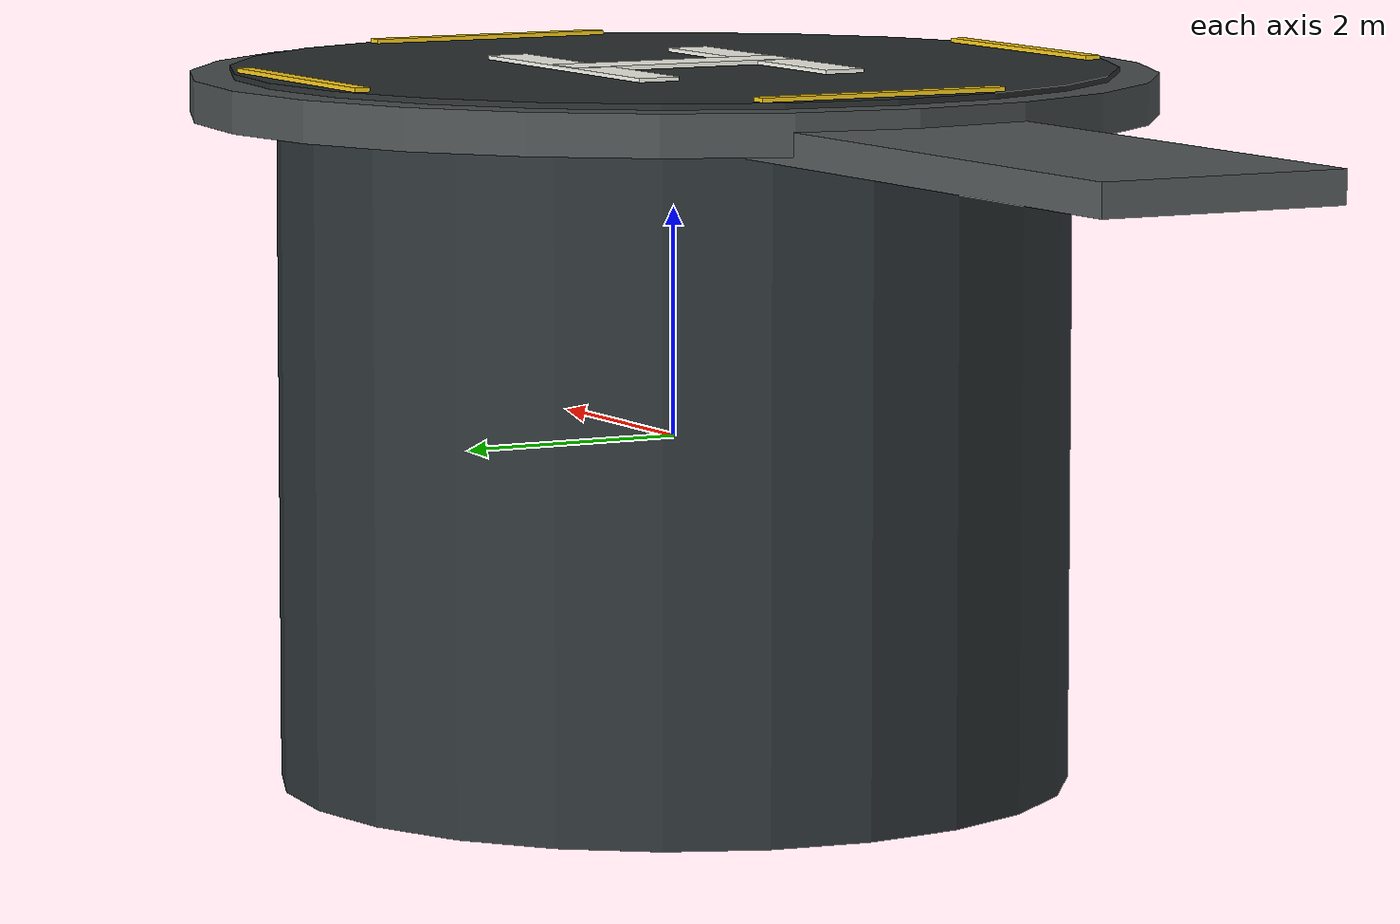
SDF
<?xml version="1.0"?>
<sdf version="1.8">
  <model name="shore_helipad">
    <static>true</static>
    <link name="platform">
      <collision name="foundation_collision">
        <pose>0 0 0 0 0 0</pose>
        <geometry>
          <cylinder>
            <radius>3.45</radius>
            <length>6.0</length>
          </cylinder>
        </geometry>
      </collision>
      <visual name="foundation_visual">
        <pose>0 0 0 0 0 0</pose>
        <geometry>
          <cylinder>
            <radius>3.45</radius>
            <length>6.0</length>
          </cylinder>
        </geometry>
        <material>
          <ambient>0.12 0.14 0.15 1</ambient>
          <diffuse>0.18 0.21 0.22 1</diffuse>
          <specular>0.18 0.2 0.2 1</specular>
        </material>
      </visual>

      <collision name="deck_collision">
        <pose>0 0 3.0 0 0 0</pose>
        <geometry>
          <cylinder>
            <radius>4.2</radius>
            <length>0.36</length>
          </cylinder>
        </geometry>
      </collision>
      <visual name="deck_edge_visual">
        <pose>0 0 3.0 0 0 0</pose>
        <geometry>
          <cylinder>
            <radius>4.2</radius>
            <length>0.36</length>
          </cylinder>
        </geometry>
        <material>
          <ambient>0.22 0.24 0.24 1</ambient>
          <diffuse>0.3 0.32 0.32 1</diffuse>
          <specular>0.2 0.2 0.2 1</specular>
        </material>
      </visual>
      <visual name="deck_surface_visual">
        <pose>0 0 3.205 0 0 0</pose>
        <geometry>
          <cylinder>
            <radius>3.85</radius>
            <length>0.05</length>
          </cylinder>
        </geometry>
        <material>
          <ambient>0.12 0.14 0.14 1</ambient>
          <diffuse>0.17 0.19 0.19 1</diffuse>
          <specular>0.08 0.08 0.08 1</specular>
        </material>
      </visual>

      <collision name="shore_walkway_collision">
        <pose>-5.3 0 2.88 0 0 0</pose>
        <geometry>
          <box>
            <size>6.8 2.2 0.28</size>
          </box>
        </geometry>
      </collision>
      <visual name="shore_walkway_visual">
        <pose>-5.3 0 2.88 0 0 0</pose>
        <geometry>
          <box>
            <size>6.8 2.2 0.28</size>
          </box>
        </geometry>
        <material>
          <ambient>0.25 0.27 0.27 1</ambient>
          <diffuse>0.34 0.36 0.36 1</diffuse>
          <specular>0.12 0.12 0.12 1</specular>
        </material>
      </visual>

      <visual name="h_left_visual">
        <pose>0 -0.9 3.245 0 0 0</pose>
        <geometry>
          <box>
            <size>2.8 0.38 0.04</size>
          </box>
        </geometry>
        <material>
          <ambient>0.92 0.92 0.88 1</ambient>
          <diffuse>1 1 0.96 1</diffuse>
          <specular>0.15 0.15 0.15 1</specular>
        </material>
      </visual>
      <visual name="h_right_visual">
        <pose>0 0.9 3.245 0 0 0</pose>
        <geometry>
          <box>
            <size>2.8 0.38 0.04</size>
          </box>
        </geometry>
        <material>
          <ambient>0.92 0.92 0.88 1</ambient>
          <diffuse>1 1 0.96 1</diffuse>
          <specular>0.15 0.15 0.15 1</specular>
        </material>
      </visual>
      <visual name="h_crossbar_visual">
        <pose>0 0 3.247 0 0 0</pose>
        <geometry>
          <box>
            <size>0.42 2.15 0.045</size>
          </box>
        </geometry>
        <material>
          <ambient>0.92 0.92 0.88 1</ambient>
          <diffuse>1 1 0.96 1</diffuse>
          <specular>0.15 0.15 0.15 1</specular>
        </material>
      </visual>

      <visual name="edge_north_visual">
        <pose>0 3.55 3.245 0 0 0</pose>
        <geometry>
          <box>
            <size>2.3 0.14 0.045</size>
          </box>
        </geometry>
        <material>
          <ambient>0.92 0.72 0.08 1</ambient>
          <diffuse>1 0.82 0.1 1</diffuse>
          <specular>0.35 0.3 0.08 1</specular>
        </material>
      </visual>
      <visual name="edge_south_visual">
        <pose>0 -3.55 3.245 0 0 0</pose>
        <geometry>
          <box>
            <size>2.3 0.14 0.045</size>
          </box>
        </geometry>
        <material>
          <ambient>0.92 0.72 0.08 1</ambient>
          <diffuse>1 0.82 0.1 1</diffuse>
          <specular>0.35 0.3 0.08 1</specular>
        </material>
      </visual>
      <visual name="edge_east_visual">
        <pose>3.55 0 3.245 0 0 1.5708</pose>
        <geometry>
          <box>
            <size>2.3 0.14 0.045</size>
          </box>
        </geometry>
        <material>
          <ambient>0.92 0.72 0.08 1</ambient>
          <diffuse>1 0.82 0.1 1</diffuse>
          <specular>0.35 0.3 0.08 1</specular>
        </material>
      </visual>
      <visual name="edge_west_visual">
        <pose>-3.55 0 3.245 0 0 1.5708</pose>
        <geometry>
          <box>
            <size>2.3 0.14 0.045</size>
          </box>
        </geometry>
        <material>
          <ambient>0.92 0.72 0.08 1</ambient>
          <diffuse>1 0.82 0.1 1</diffuse>
          <specular>0.35 0.3 0.08 1</specular>
        </material>
      </visual>
    </link>
  </model>
</sdf>
